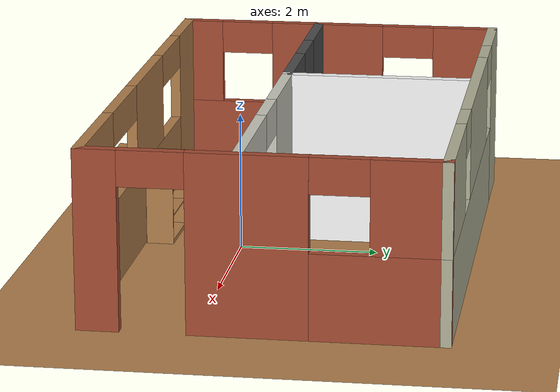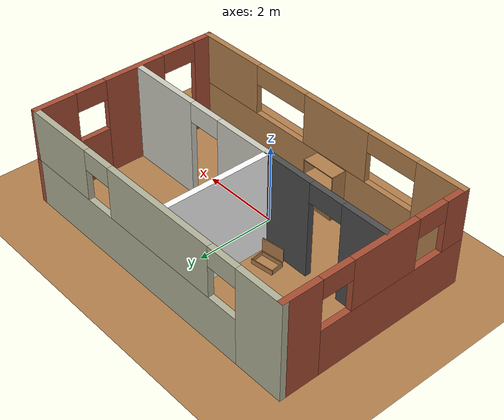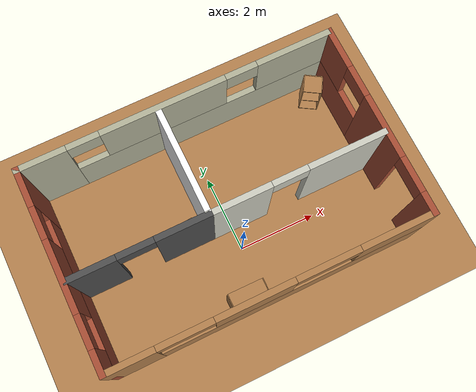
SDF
<sdf version="1.6">
 <world name="default">
  <light name="sun" type="directional">
   <pose>0 0 10 0 -0 0</pose>
   <diffuse>0.8 0.8 0.8 1</diffuse>
   <specular>0.2 0.2 0.2 1</specular>
   <attenuation>
    <range>1000</range>
    <constant>0.9</constant>
    <linear>0.01</linear>
    <quadratic>0.001</quadratic>
   </attenuation>
   <direction>-0.5 0.1 -0.9</direction>
  </light>
  <model name="ground_plane">
   <static>1</static>
   <link name="link">
    <collision name="collision">
     <geometry><plane><normal>0 0 1</normal><size>10 7</size></plane></geometry>
     <surface><friction><ode><mu>100</mu><mu2>50</mu2></ode></friction></surface>
    </collision>
    <visual name="visual">
     <cast_shadows>0</cast_shadows>
     <geometry><plane><normal>0 0 1</normal><size>10 7</size></plane></geometry>
     <material>
      <script><uri>file://media/materials/scripts/gazebo.material</uri><name>Gazebo/WoodFloor</name></script>
     </material>
    </visual>
   </link>
  </model>
  <gravity>0 0 -9.8</gravity>
  <magnetic_field>6e-06 2.3e-05 -4.2e-05</magnetic_field>
  <atmosphere type="adiabatic"/>
  <physics name="default_physics" default="0" type="ode">
   <max_step_size>0.001</max_step_size>
   <real_time_factor>1</real_time_factor>
   <real_time_update_rate>1000</real_time_update_rate>
  </physics>
  <scene><ambient>0.4 0.4 0.4 1</ambient><background>0.7 0.7 0.7 1</background><shadows>1</shadows></scene>
  <audio><device>default</device></audio>
  <spherical_coordinates>
   <surface_model>EARTH_WGS84</surface_model>
   <latitude_deg>0</latitude_deg>
   <longitude_deg>0</longitude_deg>
   <elevation>0</elevation>
   <heading_deg>0</heading_deg>
  </spherical_coordinates>
  <model name="office">
   <pose>-0.067339 0.92509 0 0 -0 0</pose>
   <link name="Wall_0">
    <pose>-0 2.425 0 0 -0 0</pose>
    <visual name="Wall_0_Visual_0">
     <pose>-3.36744 0 1.25 0 -0 0</pose>
     <geometry><box><size>1.26512 0.15 2.5</size></box></geometry>
     <material>
      <script><uri>file://media/materials/scripts/gazebo.material</uri><name>Gazebo/Residential</name></script>
      <ambient>1 1 1 1</ambient>
     </material>
     <meta><layer>0</layer></meta>
    </visual>
    <collision name="Wall_0_Collision_0">
     <geometry><box><size>1.26512 0.15 2.5</size></box></geometry>
     <pose>-3.36744 0 1.25 0 -0 0</pose>
    </collision>
    <visual name="Wall_0_Visual_1">
     <pose>0.63256 0 0.6 0 -0 0</pose>
     <geometry><box><size>6.73488 0.15 1.2</size></box></geometry>
     <material>
      <script><uri>file://media/materials/scripts/gazebo.material</uri><name>Gazebo/Residential</name></script>
      <ambient>1 1 1 1</ambient>
     </material>
     <meta><layer>0</layer></meta>
    </visual>
    <collision name="Wall_0_Collision_1">
     <geometry><box><size>6.73488 0.15 1.2</size></box></geometry>
     <pose>0.63256 0 0.6 0 -0 0</pose>
    </collision>
    <visual name="Wall_0_Visual_2">
     <pose>-0.357743 0 1.85 0 -0 0</pose>
     <geometry><box><size>3.15428 0.15 1.3</size></box></geometry>
     <material>
      <script><uri>file://media/materials/scripts/gazebo.material</uri><name>Gazebo/Residential</name></script>
      <ambient>1 1 1 1</ambient>
     </material>
     <meta><layer>0</layer></meta>
    </visual>
    <collision name="Wall_0_Collision_2">
     <geometry><box><size>3.15428 0.15 1.3</size></box></geometry>
     <pose>-0.357743 0 1.85 0 -0 0</pose>
    </collision>
    <visual name="Wall_0_Visual_3">
     <pose>3.0097 0 1.85 0 -0 0</pose>
     <geometry><box><size>1.9806 0.15 1.3</size></box></geometry>
     <material>
      <script><uri>file://media/materials/scripts/gazebo.material</uri><name>Gazebo/Residential</name></script>
      <ambient>1 1 1 1</ambient>
     </material>
     <meta><layer>0</layer></meta>
    </visual>
    <collision name="Wall_0_Collision_3">
     <geometry><box><size>1.9806 0.15 1.3</size></box></geometry>
     <pose>3.0097 0 1.85 0 -0 0</pose>
    </collision>
    <visual name="Wall_0_Visual_4">
     <pose>-2.33488 0 2.25 0 -0 0</pose>
     <geometry><box><size>0.8 0.15 0.5</size></box></geometry>
     <material>
      <script><uri>file://media/materials/scripts/gazebo.material</uri><name>Gazebo/Residential</name></script>
      <ambient>1 1 1 1</ambient>
     </material>
     <meta><layer>0</layer></meta>
    </visual>
    <collision name="Wall_0_Collision_4">
     <geometry><box><size>0.8 0.15 0.5</size></box></geometry>
     <pose>-2.33488 0 2.25 0 -0 0</pose>
    </collision>
    <visual name="Wall_0_Visual_5">
     <pose>1.61939 0 2.25 0 -0 0</pose>
     <geometry><box><size>0.8 0.15 0.5</size></box></geometry>
     <material>
      <script><uri>file://media/materials/scripts/gazebo.material</uri><name>Gazebo/Residential</name></script>
      <ambient>1 1 1 1</ambient>
     </material>
     <meta><layer>0</layer></meta>
    </visual>
    <collision name="Wall_0_Collision_5">
     <geometry><box><size>0.8 0.15 0.5</size></box></geometry>
     <pose>1.61939 0 2.25 0 -0 0</pose>
    </collision>
   </link>
   <link name="Wall_11">
    <pose>-2.17931 -0.321151 0 0 -0 3.14159</pose>
    <visual name="Wall_11_Visual_0">
     <pose>-1.05942 0 1.25 0 -0 0</pose>
     <geometry><box><size>1.38115 0.15 2.5</size></box></geometry>
     <material>
      <script><uri>file://media/materials/scripts/gazebo.material</uri><name>Gazebo/Road</name></script>
      <ambient>1 1 1 1</ambient>
     </material>
     <meta><layer>0</layer></meta>
    </visual>
    <collision name="Wall_11_Collision_0">
     <geometry><box><size>1.38115 0.15 2.5</size></box></geometry>
     <pose>-1.05942 0 1.25 0 -0 0</pose>
    </collision>
    <visual name="Wall_11_Visual_1">
     <pose>1.14058 0 1.25 0 -0 0</pose>
     <geometry><box><size>1.21884 0.15 2.5</size></box></geometry>
     <material>
      <script><uri>file://media/materials/scripts/gazebo.material</uri><name>Gazebo/Road</name></script>
      <ambient>1 1 1 1</ambient>
     </material>
     <meta><layer>0</layer></meta>
    </visual>
    <collision name="Wall_11_Collision_1">
     <geometry><box><size>1.21884 0.15 2.5</size></box></geometry>
     <pose>1.14058 0 1.25 0 -0 0</pose>
    </collision>
    <visual name="Wall_11_Visual_2">
     <pose>0.081155 0 2.25 0 -0 0</pose>
     <geometry><box><size>0.9 0.15 0.5</size></box></geometry>
     <material>
      <script><uri>file://media/materials/scripts/gazebo.material</uri><name>Gazebo/Road</name></script>
      <ambient>1 1 1 1</ambient>
     </material>
     <meta><layer>0</layer></meta>
    </visual>
    <collision name="Wall_11_Collision_2">
     <geometry><box><size>0.9 0.15 0.5</size></box></geometry>
     <pose>0.081155 0 2.25 0 -0 0</pose>
    </collision>
   </link>
   <link name="Wall_2">
    <pose>-3.925 0 0 0 -0 -1.5708</pose>
    <visual name="Wall_2_Visual_0">
     <pose>-2.00044 0 1.25 0 -0 0</pose>
     <geometry><box><size>0.999113 0.15 2.5</size></box></geometry>
     <material>
      <script><uri>file://media/materials/scripts/gazebo.material</uri><name>Gazebo/Bricks</name></script>
      <ambient>1 1 1 1</ambient>
     </material>
     <meta><layer>0</layer></meta>
    </visual>
    <collision name="Wall_2_Collision_0">
     <geometry><box><size>0.999113 0.15 2.5</size></box></geometry>
     <pose>-2.00044 0 1.25 0 -0 0</pose>
    </collision>
    <visual name="Wall_2_Visual_1">
     <pose>0.499557 0 0.6 0 -0 0</pose>
     <geometry><box><size>4.00089 0.15 1.2</size></box></geometry>
     <material>
      <script><uri>file://media/materials/scripts/gazebo.material</uri><name>Gazebo/Bricks</name></script>
      <ambient>1 1 1 1</ambient>
     </material>
     <meta><layer>0</layer></meta>
    </visual>
    <collision name="Wall_2_Collision_1">
     <geometry><box><size>4.00089 0.15 1.2</size></box></geometry>
     <pose>0.499557 0 0.6 0 -0 0</pose>
    </collision>
    <visual name="Wall_2_Visual_2">
     <pose>0.181938 0 1.85 0 -0 0</pose>
     <geometry><box><size>1.76565 0.15 1.3</size></box></geometry>
     <material>
      <script><uri>file://media/materials/scripts/gazebo.material</uri><name>Gazebo/Bricks</name></script>
      <ambient>1 1 1 1</ambient>
     </material>
     <meta><layer>0</layer></meta>
    </visual>
    <collision name="Wall_2_Collision_2">
     <geometry><box><size>1.76565 0.15 1.3</size></box></geometry>
     <pose>0.181938 0 1.85 0 -0 0</pose>
    </collision>
    <visual name="Wall_2_Visual_3">
     <pose>2.18238 0 1.85 0 -0 0</pose>
     <geometry><box><size>0.635237 0.15 1.3</size></box></geometry>
     <material>
      <script><uri>file://media/materials/scripts/gazebo.material</uri><name>Gazebo/Bricks</name></script>
      <ambient>1 1 1 1</ambient>
     </material>
     <meta><layer>0</layer></meta>
    </visual>
    <collision name="Wall_2_Collision_3">
     <geometry><box><size>0.635237 0.15 1.3</size></box></geometry>
     <pose>2.18238 0 1.85 0 -0 0</pose>
    </collision>
    <visual name="Wall_2_Visual_4">
     <pose>-1.10089 0 2.25 0 -0 0</pose>
     <geometry><box><size>0.8 0.15 0.5</size></box></geometry>
     <material>
      <script><uri>file://media/materials/scripts/gazebo.material</uri><name>Gazebo/Bricks</name></script>
      <ambient>1 1 1 1</ambient>
     </material>
     <meta><layer>0</layer></meta>
    </visual>
    <collision name="Wall_2_Collision_4">
     <geometry><box><size>0.8 0.15 0.5</size></box></geometry>
     <pose>-1.10089 0 2.25 0 -0 0</pose>
    </collision>
    <visual name="Wall_2_Visual_5">
     <pose>1.46476 0 2.25 0 -0 0</pose>
     <geometry><box><size>0.8 0.15 0.5</size></box></geometry>
     <material>
      <script><uri>file://media/materials/scripts/gazebo.material</uri><name>Gazebo/Bricks</name></script>
      <ambient>1 1 1 1</ambient>
     </material>
     <meta><layer>0</layer></meta>
    </visual>
    <collision name="Wall_2_Collision_5">
     <geometry><box><size>0.8 0.15 0.5</size></box></geometry>
     <pose>1.46476 0 2.25 0 -0 0</pose>
    </collision>
   </link>
   <link name="Wall_3">
    <pose>-0 -2.425 0 0 -0 0</pose>
    <visual name="Wall_3_Visual_0">
     <pose>-3.36744 0 1.25 0 -0 0</pose>
     <geometry><box><size>1.26512 0.15 2.5</size></box></geometry>
     <material>
      <script><uri>file://media/materials/scripts/gazebo.material</uri><name>Gazebo/WoodPallet</name></script>
      <ambient>1 1 1 1</ambient>
     </material>
     <meta><layer>0</layer></meta>
    </visual>
    <collision name="Wall_3_Collision_0">
     <geometry><box><size>1.26512 0.15 2.5</size></box></geometry>
     <pose>-3.36744 0 1.25 0 -0 0</pose>
    </collision>
    <visual name="Wall_3_Visual_1">
     <pose>0.63256 0 0.6 0 -0 0</pose>
     <geometry><box><size>6.73488 0.15 1.2</size></box></geometry>
     <material>
      <script><uri>file://media/materials/scripts/gazebo.material</uri><name>Gazebo/WoodPallet</name></script>
      <ambient>1 1 1 1</ambient>
     </material>
     <meta><layer>0</layer></meta>
    </visual>
    <collision name="Wall_3_Collision_1">
     <geometry><box><size>6.73488 0.15 1.2</size></box></geometry>
     <pose>0.63256 0 0.6 0 -0 0</pose>
    </collision>
    <visual name="Wall_3_Visual_2">
     <pose>-0.417255 0 1.85 0 -0 0</pose>
     <geometry><box><size>1.92435 0.15 1.3</size></box></geometry>
     <material>
      <script><uri>file://media/materials/scripts/gazebo.material</uri><name>Gazebo/WoodPallet</name></script>
      <ambient>1 1 1 1</ambient>
     </material>
     <meta><layer>0</layer></meta>
    </visual>
    <collision name="Wall_3_Collision_2">
     <geometry><box><size>1.92435 0.15 1.3</size></box></geometry>
     <pose>-0.417255 0 1.85 0 -0 0</pose>
    </collision>
    <visual name="Wall_3_Visual_3">
     <pose>3.05599 0 1.85 0 -0 0</pose>
     <geometry><box><size>1.88803 0.15 1.3</size></box></geometry>
     <material>
      <script><uri>file://media/materials/scripts/gazebo.material</uri><name>Gazebo/WoodPallet</name></script>
      <ambient>1 1 1 1</ambient>
     </material>
     <meta><layer>0</layer></meta>
    </visual>
    <collision name="Wall_3_Collision_3">
     <geometry><box><size>1.88803 0.15 1.3</size></box></geometry>
     <pose>3.05599 0 1.85 0 -0 0</pose>
    </collision>
    <visual name="Wall_3_Visual_4">
     <pose>-2.05715 0 2.25 0 -0 0</pose>
     <geometry><box><size>1.35545 0.15 0.5</size></box></geometry>
     <material>
      <script><uri>file://media/materials/scripts/gazebo.material</uri><name>Gazebo/WoodPallet</name></script>
      <ambient>1 1 1 1</ambient>
     </material>
     <meta><layer>0</layer></meta>
    </visual>
    <collision name="Wall_3_Collision_4">
     <geometry><box><size>1.35545 0.15 0.5</size></box></geometry>
     <pose>-2.05715 0 2.25 0 -0 0</pose>
    </collision>
    <visual name="Wall_3_Visual_5">
     <pose>1.32845 0 2.25 0 -0 0</pose>
     <geometry><box><size>1.56705 0.15 0.5</size></box></geometry>
     <material>
      <script><uri>file://media/materials/scripts/gazebo.material</uri><name>Gazebo/WoodPallet</name></script>
      <ambient>1 1 1 1</ambient>
     </material>
     <meta><layer>0</layer></meta>
    </visual>
    <collision name="Wall_3_Collision_5">
     <geometry><box><size>1.56705 0.15 0.5</size></box></geometry>
     <pose>1.32845 0 2.25 0 -0 0</pose>
    </collision>
   </link>
   <link name="Wall_4">
    <pose>3.925 0 0 0 -0 1.5708</pose>
    <visual name="Wall_4_Visual_0">
     <pose>-2.2064 0 1.25 0 -0 0</pose>
     <geometry><box><size>0.587198 0.15 2.5</size></box></geometry>
     <material>
      <script><uri>file://media/materials/scripts/gazebo.material</uri><name>Gazebo/Bricks</name></script>
      <ambient>1 1 1 1</ambient>
     </material>
     <meta><layer>0</layer></meta>
    </visual>
    <collision name="Wall_4_Collision_0">
     <geometry><box><size>0.587198 0.15 2.5</size></box></geometry>
     <pose>-2.2064 0 1.25 0 -0 0</pose>
    </collision>
    <visual name="Wall_4_Visual_1">
     <pose>-0.195633 0 1.25 0 -0 0</pose>
     <geometry><box><size>1.63434 0.15 2.5</size></box></geometry>
     <material>
      <script><uri>file://media/materials/scripts/gazebo.material</uri><name>Gazebo/Bricks</name></script>
      <ambient>1 1 1 1</ambient>
     </material>
     <meta><layer>0</layer></meta>
    </visual>
    <collision name="Wall_4_Collision_1">
     <geometry><box><size>1.63434 0.15 2.5</size></box></geometry>
     <pose>-0.195633 0 1.25 0 -0 0</pose>
    </collision>
    <visual name="Wall_4_Visual_2">
     <pose>1.56077 0 0.6 0 -0 0</pose>
     <geometry><box><size>1.87846 0.15 1.2</size></box></geometry>
     <material>
      <script><uri>file://media/materials/scripts/gazebo.material</uri><name>Gazebo/Bricks</name></script>
      <ambient>1 1 1 1</ambient>
     </material>
     <meta><layer>0</layer></meta>
    </visual>
    <collision name="Wall_4_Collision_2">
     <geometry><box><size>1.87846 0.15 1.2</size></box></geometry>
     <pose>1.56077 0 0.6 0 -0 0</pose>
    </collision>
    <visual name="Wall_4_Visual_3">
     <pose>1.96077 0 1.85 0 -0 0</pose>
     <geometry><box><size>1.07846 0.15 1.3</size></box></geometry>
     <material>
      <script><uri>file://media/materials/scripts/gazebo.material</uri><name>Gazebo/Bricks</name></script>
      <ambient>1 1 1 1</ambient>
     </material>
     <meta><layer>0</layer></meta>
    </visual>
    <collision name="Wall_4_Collision_3">
     <geometry><box><size>1.07846 0.15 1.3</size></box></geometry>
     <pose>1.96077 0 1.85 0 -0 0</pose>
    </collision>
    <visual name="Wall_4_Visual_4">
     <pose>-1.4628 0 2.25 0 -0 0</pose>
     <geometry><box><size>0.9 0.15 0.5</size></box></geometry>
     <material>
      <script><uri>file://media/materials/scripts/gazebo.material</uri><name>Gazebo/Bricks</name></script>
      <ambient>1 1 1 1</ambient>
     </material>
     <meta><layer>0</layer></meta>
    </visual>
    <collision name="Wall_4_Collision_4">
     <geometry><box><size>0.9 0.15 0.5</size></box></geometry>
     <pose>-1.4628 0 2.25 0 -0 0</pose>
    </collision>
    <visual name="Wall_4_Visual_5">
     <pose>1.02154 0 2.25 0 -0 0</pose>
     <geometry><box><size>0.8 0.15 0.5</size></box></geometry>
     <material>
      <script><uri>file://media/materials/scripts/gazebo.material</uri><name>Gazebo/Bricks</name></script>
      <ambient>1 1 1 1</ambient>
     </material>
     <meta><layer>0</layer></meta>
    </visual>
    <collision name="Wall_4_Collision_5">
     <geometry><box><size>0.8 0.15 0.5</size></box></geometry>
     <pose>1.02154 0 2.25 0 -0 0</pose>
    </collision>
   </link>
   <link name="Wall_7">
    <collision name="Wall_7_Collision">
     <geometry><box><size>2.75 0.15 2.5</size></box></geometry>
     <pose>0 0 1.25 0 -0 0</pose>
    </collision>
    <visual name="Wall_7_Visual">
     <pose>0 0 1.25 0 -0 0</pose>
     <geometry><box><size>2.75 0.15 2.5</size></box></geometry>
     <material>
      <script><uri>file://media/materials/scripts/gazebo.material</uri><name>Gazebo/Motorway</name></script>
      <ambient>1 1 1 1</ambient>
     </material>
     <meta><layer>0</layer></meta>
    </visual>
    <pose>-0.50431 0.978849 0 0 -0 -1.5708</pose>
   </link>
   <link name="Wall_9">
    <pose>1.67069 -0.321151 0 0 -0 0</pose>
    <visual name="Wall_9_Visual_0">
     <pose>-1.44177 0 1.25 0 -0 0</pose>
     <geometry><box><size>1.61645 0.15 2.5</size></box></geometry>
     <material>
      <script><uri>file://media/materials/scripts/gazebo.material</uri><name>Gazebo/PaintedWall</name></script>
      <ambient>1 1 1 1</ambient>
     </material>
     <meta><layer>0</layer></meta>
    </visual>
    <collision name="Wall_9_Collision_0">
     <geometry><box><size>1.61645 0.15 2.5</size></box></geometry>
     <pose>-1.44177 0 1.25 0 -0 0</pose>
    </collision>
    <visual name="Wall_9_Visual_1">
     <pose>1.25823 0 1.25 0 -0 0</pose>
     <geometry><box><size>1.98354 0.15 2.5</size></box></geometry>
     <material>
      <script><uri>file://media/materials/scripts/gazebo.material</uri><name>Gazebo/PaintedWall</name></script>
      <ambient>1 1 1 1</ambient>
     </material>
     <meta><layer>0</layer></meta>
    </visual>
    <collision name="Wall_9_Collision_1">
     <geometry><box><size>1.98354 0.15 2.5</size></box></geometry>
     <pose>1.25823 0 1.25 0 -0 0</pose>
    </collision>
    <visual name="Wall_9_Visual_2">
     <pose>-0.183545 0 2.25 0 -0 0</pose>
     <geometry><box><size>0.9 0.15 0.5</size></box></geometry>
     <material>
      <script><uri>file://media/materials/scripts/gazebo.material</uri><name>Gazebo/PaintedWall</name></script>
      <ambient>1 1 1 1</ambient>
     </material>
     <meta><layer>0</layer></meta>
    </visual>
    <collision name="Wall_9_Collision_2">
     <geometry><box><size>0.9 0.15 0.5</size></box></geometry>
     <pose>-0.183545 0 2.25 0 -0 0</pose>
    </collision>
   </link>
   <static>1</static>
  </model>
  <model name="cabinet">
   <static>1</static>
   <link name="cabinet_bottom_plate">
    <inertial>
     <pose>0 0 -1 0 -0 0</pose>
     <inertia><ixx>2.05</ixx><ixy>0</ixy><ixz>0</ixz><iyy>2.05</iyy><iyz>0</iyz><izz>2.05</izz></inertia>
     <mass>25</mass>
    </inertial>
    <collision name="cabinet_bottom_plate_geom">
     <pose>0 0 0.01 0 -0 0</pose>
     <geometry><box><size>0.45 0.45 0.02</size></box></geometry>
    </collision>
    <visual name="cabinet_bottom_plate_geom_visual">
     <pose>0 0 0.01 0 -0 0</pose>
     <geometry><box><size>0.45 0.45 0.02</size></box></geometry>
     <material>
      <script><uri>file://media/materials/scripts/gazebo.material</uri><name>Gazebo/Wood</name></script>
     </material>
    </visual>
    <collision name="cabinet_bottom_plate_geom_cabinet_back_plate">
     <pose>0.235 0 0.51 0 -0 0</pose>
     <geometry><box><size>0.02 0.45 1.02</size></box></geometry>
    </collision>
    <visual name="cabinet_bottom_plate_geom_cabinet_back_plate_visual">
     <pose>0.235 0 0.51 0 -0 0</pose>
     <geometry><box><size>0.02 0.45 1.02</size></box></geometry>
     <material>
      <script><uri>file://media/materials/scripts/gazebo.material</uri><name>Gazebo/Wood</name></script>
     </material>
    </visual>
    <collision name="cabinet_bottom_plate_geom_cabinet_left_plate">
     <pose>0 0.235 0.51 0 -0 0</pose>
     <geometry><box><size>0.45 0.02 1.02</size></box></geometry>
    </collision>
    <visual name="cabinet_bottom_plate_geom_cabinet_left_plate_visual">
     <pose>0 0.235 0.51 0 -0 0</pose>
     <geometry><box><size>0.45 0.02 1.02</size></box></geometry>
     <material>
      <script><uri>file://media/materials/scripts/gazebo.material</uri><name>Gazebo/Wood</name></script>
     </material>
    </visual>
    <collision name="cabinet_bottom_plate_geom_cabinet_middle_plate">
     <pose>0 0 0.51 0 -0 0</pose>
     <geometry><box><size>0.45 0.45 0.02</size></box></geometry>
    </collision>
    <visual name="cabinet_bottom_plate_geom_cabinet_middle_plate_visual">
     <pose>0 0 0.51 0 -0 0</pose>
     <geometry><box><size>0.45 0.45 0.02</size></box></geometry>
     <material>
      <script><uri>file://media/materials/scripts/gazebo.material</uri><name>Gazebo/Wood</name></script>
     </material>
    </visual>
    <collision name="cabinet_bottom_plate_geom_cabinet_right_plate">
     <pose>0 -0.235 0.51 0 -0 0</pose>
     <geometry><box><size>0.45 0.02 1.02</size></box></geometry>
    </collision>
    <visual name="cabinet_bottom_plate_geom_cabinet_right_plate_visual">
     <pose>0 -0.235 0.51 0 -0 0</pose>
     <geometry><box><size>0.45 0.02 1.02</size></box></geometry>
     <material>
      <script><uri>file://media/materials/scripts/gazebo.material</uri><name>Gazebo/Wood</name></script>
     </material>
    </visual>
    <collision name="cabinet_bottom_plate_geom_cabinet_top_plate">
     <pose>0 0 1.01 0 -0 0</pose>
     <geometry><box><size>0.45 0.45 0.02</size></box></geometry>
    </collision>
    <visual name="cabinet_bottom_plate_geom_cabinet_top_plate_visual">
     <pose>0 0 1.01 0 -0 0</pose>
     <geometry><box><size>0.45 0.45 0.02</size></box></geometry>
     <material>
      <script><uri>file://media/materials/scripts/gazebo.material</uri><name>Gazebo/Wood</name></script>
     </material>
    </visual>
   </link>
   <pose>3.3832 2.85696 0 0 -0 1.02422</pose>
  </model>
  <model name="bookshelf">
   <static>1</static>
   <link name="link">
    <inertial><mass>1</mass></inertial>
    <collision name="back">
     <pose>0 0.005 0.6 0 -0 0</pose>
     <geometry><box><size>0.9 0.01 1.2</size></box></geometry>
    </collision>
    <visual name="visual1">
     <pose>0 0.005 0.6 0 -0 0</pose>
     <geometry><box><size>0.9 0.01 1.2</size></box></geometry>
     <material>
      <script><uri>file://media/materials/scripts/gazebo.material</uri><name>Gazebo/Wood</name></script>
     </material>
    </visual>
    <collision name="left_side">
     <pose>0.45 -0.195 0.6 0 -0 0</pose>
     <geometry><box><size>0.02 0.4 1.2</size></box></geometry>
    </collision>
    <visual name="visual2">
     <pose>0.45 -0.195 0.6 0 -0 0</pose>
     <geometry><box><size>0.02 0.4 1.2</size></box></geometry>
     <material>
      <script><uri>file://media/materials/scripts/gazebo.material</uri><name>Gazebo/Wood</name></script>
     </material>
    </visual>
    <collision name="right_side">
     <pose>-0.45 -0.195 0.6 0 -0 0</pose>
     <geometry><box><size>0.02 0.4 1.2</size></box></geometry>
    </collision>
    <visual name="visual3">
     <pose>-0.45 -0.195 0.6 0 -0 0</pose>
     <geometry><box><size>0.02 0.4 1.2</size></box></geometry>
     <material>
      <script><uri>file://media/materials/scripts/gazebo.material</uri><name>Gazebo/Wood</name></script>
     </material>
    </visual>
    <collision name="bottom">
     <pose>0 -0.195 0.03 0 -0 0</pose>
     <geometry><box><size>0.88 0.4 0.06</size></box></geometry>
    </collision>
    <visual name="visual4">
     <pose>0 -0.195 0.03 0 -0 0</pose>
     <geometry><box><size>0.88 0.4 0.06</size></box></geometry>
     <material>
      <script><uri>file://media/materials/scripts/gazebo.material</uri><name>Gazebo/Wood</name></script>
     </material>
    </visual>
    <collision name="top">
     <pose>0 -0.195 1.19 0 -0 0</pose>
     <geometry><box><size>0.88 0.4 0.02</size></box></geometry>
    </collision>
    <visual name="visual5">
     <pose>0 -0.195 1.19 0 -0 0</pose>
     <geometry><box><size>0.88 0.4 0.02</size></box></geometry>
     <material>
      <script><uri>file://media/materials/scripts/gazebo.material</uri><name>Gazebo/Wood</name></script>
     </material>
    </visual>
    <collision name="low_shelf">
     <pose>0 -0.195 0.43 0 -0 0</pose>
     <geometry><box><size>0.88 0.4 0.02</size></box></geometry>
    </collision>
    <visual name="visual6">
     <pose>0 -0.195 0.43 0 -0 0</pose>
     <geometry><box><size>0.88 0.4 0.02</size></box></geometry>
     <material>
      <script><uri>file://media/materials/scripts/gazebo.material</uri><name>Gazebo/Wood</name></script>
     </material>
    </visual>
    <collision name="high_shelf">
     <pose>0 -0.195 0.8 0 -0 0</pose>
     <geometry><box><size>0.88 0.4 0.02</size></box></geometry>
    </collision>
    <visual name="visual7">
     <pose>0 -0.195 0.8 0 -0 0</pose>
     <geometry><box><size>0.88 0.4 0.02</size></box></geometry>
     <material>
      <script><uri>file://media/materials/scripts/gazebo.material</uri><name>Gazebo/Wood</name></script>
     </material>
    </visual>
   </link>
   <pose>-0.458843 -1.40011 0 0 -0 3.12988</pose>
  </model>
  <model name="wooden_case">
   <link name="base">
    <pose>0 0 0.024 0 -0 0</pose>
    <inertial>
     <pose>-0.022184 0 0.171592 0 -0 0</pose>
     <mass>3.96264</mass>
     <inertia>
      <ixx>0.213536</ixx>
      <ixy>0</ixy>
      <ixz>0.000779377</ixz>
      <iyy>0.0708943</iyy>
      <iyz>0</iyz>
      <izz>0.154604</izz>
     </inertia>
    </inertial>
    <collision name="collision_back">
     <pose>-0.053975 0 0.1778 0 -0 0</pose>
     <geometry><box><size>0.01905 0.5461 0.3175</size></box></geometry>
     <surface>
      <contact>
       <poissons_ratio>0.347</poissons_ratio>
       <elastic_modulus>8.8e+09</elastic_modulus>
       <ode><kp>100000</kp><kd>100</kd><max_vel>100</max_vel><min_depth>0.001</min_depth></ode>
      </contact>
      <friction>
       <torsional>
        <coefficient>1</coefficient>
        <use_patch_radius>0</use_patch_radius>
        <surface_radius>0.01</surface_radius>
       </torsional>
      </friction>
     </surface>
    </collision>
    <visual name="visual_back">
     <pose>-0.053975 0 0.1778 0 -0 0</pose>
     <geometry><box><size>0.01905 0.5461 0.3175</size></box></geometry>
     <material>
      <script><uri>file://media/materials/scripts/gazebo.material</uri><name>Gazebo/Wood</name></script>
     </material>
    </visual>
    <collision name="collision_bottom">
     <pose>0 0 0.009525 0 -0 0</pose>
     <geometry><box><size>0.127 0.5842 0.01905</size></box></geometry>
     <surface>
      <contact>
       <poissons_ratio>0.347</poissons_ratio>
       <elastic_modulus>8.8e+09</elastic_modulus>
       <ode><kp>100000</kp><kd>100</kd><max_vel>100</max_vel><min_depth>0.001</min_depth></ode>
      </contact>
      <friction>
       <torsional>
        <coefficient>1</coefficient>
        <use_patch_radius>0</use_patch_radius>
        <surface_radius>0.01</surface_radius>
       </torsional>
      </friction>
     </surface>
    </collision>
    <visual name="visual_bottom">
     <pose>0 0 0.009525 0 -0 0</pose>
     <geometry><box><size>0.127 0.5842 0.01905</size></box></geometry>
     <material>
      <script><uri>file://media/materials/scripts/gazebo.material</uri><name>Gazebo/Wood</name></script>
     </material>
    </visual>
    <collision name="collision_top">
     <pose>0 0 0.346075 0 -0 0</pose>
     <geometry><box><size>0.127 0.5842 0.01905</size></box></geometry>
     <surface>
      <contact>
       <poissons_ratio>0.347</poissons_ratio>
       <elastic_modulus>8.8e+09</elastic_modulus>
       <ode><kp>100000</kp><kd>100</kd><max_vel>100</max_vel><min_depth>0.001</min_depth></ode>
      </contact>
      <friction>
       <torsional>
        <coefficient>1</coefficient>
        <use_patch_radius>0</use_patch_radius>
        <surface_radius>0.01</surface_radius>
       </torsional>
      </friction>
     </surface>
    </collision>
    <visual name="visual_top">
     <pose>0 0 0.346075 0 -0 0</pose>
     <geometry><box><size>0.127 0.5842 0.01905</size></box></geometry>
     <material>
      <script><uri>file://media/materials/scripts/gazebo.material</uri><name>Gazebo/Wood</name></script>
     </material>
    </visual>
    <collision name="collision_left">
     <pose>0 -0.282575 0.1778 0 -0 0</pose>
     <geometry><box><size>0.127 0.01905 0.3175</size></box></geometry>
     <surface>
      <contact>
       <poissons_ratio>0.347</poissons_ratio>
       <elastic_modulus>8.8e+09</elastic_modulus>
       <ode><kp>100000</kp><kd>100</kd><max_vel>100</max_vel><min_depth>0.001</min_depth></ode>
      </contact>
      <friction>
       <torsional>
        <coefficient>1</coefficient>
        <use_patch_radius>0</use_patch_radius>
        <surface_radius>0.01</surface_radius>
       </torsional>
      </friction>
     </surface>
    </collision>
    <visual name="visual_left">
     <pose>0 -0.282575 0.1778 0 -0 0</pose>
     <geometry><box><size>0.127 0.01905 0.3175</size></box></geometry>
     <material>
      <script><uri>file://media/materials/scripts/gazebo.material</uri><name>Gazebo/Wood</name></script>
     </material>
    </visual>
    <collision name="collision_right">
     <pose>0 0.282575 0.1778 0 -0 0</pose>
     <geometry><box><size>0.127 0.01905 0.3175</size></box></geometry>
     <surface>
      <contact>
       <poissons_ratio>0.347</poissons_ratio>
       <elastic_modulus>8.8e+09</elastic_modulus>
       <ode><kp>100000</kp><kd>100</kd><max_vel>100</max_vel><min_depth>0.001</min_depth></ode>
      </contact>
      <friction>
       <torsional>
        <coefficient>1</coefficient>
        <use_patch_radius>0</use_patch_radius>
        <surface_radius>0.01</surface_radius>
       </torsional>
      </friction>
     </surface>
    </collision>
    <visual name="visual_right">
     <pose>0 0.282575 0.1778 0 -0 0</pose>
     <geometry><box><size>0.127 0.01905 0.3175</size></box></geometry>
     <material>
      <script><uri>file://media/materials/scripts/gazebo.material</uri><name>Gazebo/Wood</name></script>
     </material>
    </visual>
    <collision name="collision_block_left">
     <pose>0.0095 -0.2151 -0.012 0 -0 0</pose>
     <geometry><box><size>0.108 0.05 0.024</size></box></geometry>
     <surface>
      <contact>
       <poissons_ratio>0.347</poissons_ratio>
       <elastic_modulus>8.8e+09</elastic_modulus>
       <ode><kp>100000</kp><kd>100</kd><max_vel>100</max_vel><min_depth>0.001</min_depth></ode>
      </contact>
      <friction>
       <torsional>
        <coefficient>1</coefficient>
        <use_patch_radius>0</use_patch_radius>
        <surface_radius>0.01</surface_radius>
       </torsional>
      </friction>
     </surface>
    </collision>
    <visual name="visual_block_left">
     <pose>0.0095 -0.2151 -0.012 0 -0 0</pose>
     <geometry><box><size>0.108 0.05 0.024</size></box></geometry>
     <material>
      <script><uri>file://media/materials/scripts/gazebo.material</uri><name>Gazebo/Wood</name></script>
     </material>
    </visual>
    <collision name="collision_block_right">
     <pose>0.0095 0.2151 -0.012 0 -0 0</pose>
     <geometry><box><size>0.108 0.05 0.024</size></box></geometry>
     <surface>
      <contact>
       <poissons_ratio>0.347</poissons_ratio>
       <elastic_modulus>8.8e+09</elastic_modulus>
       <ode><kp>100000</kp><kd>100</kd><max_vel>100</max_vel><min_depth>0.001</min_depth></ode>
      </contact>
      <friction>
       <torsional>
        <coefficient>1</coefficient>
        <use_patch_radius>0</use_patch_radius>
        <surface_radius>0.01</surface_radius>
       </torsional>
      </friction>
     </surface>
    </collision>
    <visual name="visual_block_right">
     <pose>0.0095 0.2151 -0.012 0 -0 0</pose>
     <geometry><box><size>0.108 0.05 0.024</size></box></geometry>
     <material>
      <script><uri>file://media/materials/scripts/gazebo.material</uri><name>Gazebo/Wood</name></script>
     </material>
    </visual>
   </link>
   <link name="lid">
    <pose>0.243775 0 0.009525 0 -0 0</pose>
    <inertial>
     <mass>1.97874</mass>
     <inertia>
      <ixx>0.0563367</ixx>
      <ixy>0</ixy>
      <ixz>0</ixz>
      <iyy>0.020911</iyy>
      <iyz>0</iyz>
      <izz>0.0771281</izz>
     </inertia>
    </inertial>
    <collision name="collision">
     <geometry><box><size>0.3556 0.5842 0.01905</size></box></geometry>
     <surface>
      <contact>
       <poissons_ratio>0.347</poissons_ratio>
       <elastic_modulus>8.8e+09</elastic_modulus>
       <ode><kp>100000</kp><kd>100</kd><max_vel>100</max_vel><min_depth>0.001</min_depth></ode>
      </contact>
      <friction>
       <torsional>
        <coefficient>1</coefficient>
        <use_patch_radius>0</use_patch_radius>
        <surface_radius>0.01</surface_radius>
       </torsional>
      </friction>
     </surface>
    </collision>
    <visual name="visual">
     <geometry><box><size>0.3556 0.5842 0.01905</size></box></geometry>
     <material>
      <script><uri>file://media/materials/scripts/gazebo.material</uri><name>Gazebo/Wood</name></script>
     </material>
    </visual>
    <visual name="tee_nut_1">
     <pose>0.122 -0.216 0 0 -0 0</pose>
     <geometry><cylinder><radius>0.00635</radius><length>0.0192405</length></cylinder></geometry>
     <material>
      <script><uri>file://media/materials/scripts/gazebo.material</uri><name>Gazebo/Grey</name></script>
     </material>
    </visual>
    <visual name="tee_nut_2">
     <pose>0.122 -0.088 0 0 -0 0</pose>
     <geometry><cylinder><radius>0.00635</radius><length>0.0192405</length></cylinder></geometry>
     <material>
      <script><uri>file://media/materials/scripts/gazebo.material</uri><name>Gazebo/Grey</name></script>
     </material>
    </visual>
    <visual name="tee_nut_3">
     <pose>0.122 0.088 0 0 -0 0</pose>
     <geometry><cylinder><radius>0.00635</radius><length>0.0192405</length></cylinder></geometry>
     <material>
      <script><uri>file://media/materials/scripts/gazebo.material</uri><name>Gazebo/Grey</name></script>
     </material>
    </visual>
    <visual name="tee_nut_4">
     <pose>0.122 0.216 0 0 -0 0</pose>
     <geometry><cylinder><radius>0.00635</radius><length>0.0192405</length></cylinder></geometry>
     <material>
      <script><uri>file://media/materials/scripts/gazebo.material</uri><name>Gazebo/Grey</name></script>
     </material>
    </visual>
   </link>
   <joint name="lid_hinge" type="revolute">
    <pose>-0.1778 0 0.01905 0 -0 0</pose>
    <parent>base</parent>
    <child>lid</child>
    <axis>
     <xyz>0 1 0</xyz>
     <limit><upper>0.523599</upper><lower>-1.5708</lower></limit>
     <use_parent_model_frame>0</use_parent_model_frame>
     <dynamics><spring_reference>0</spring_reference><spring_stiffness>0</spring_stiffness></dynamics>
    </axis>
   </joint>
   <pose>-1.05788 0.853934 0.062458 0.376823 -1.57078 -1.81975</pose>
  </model>
 </world>
</sdf>
